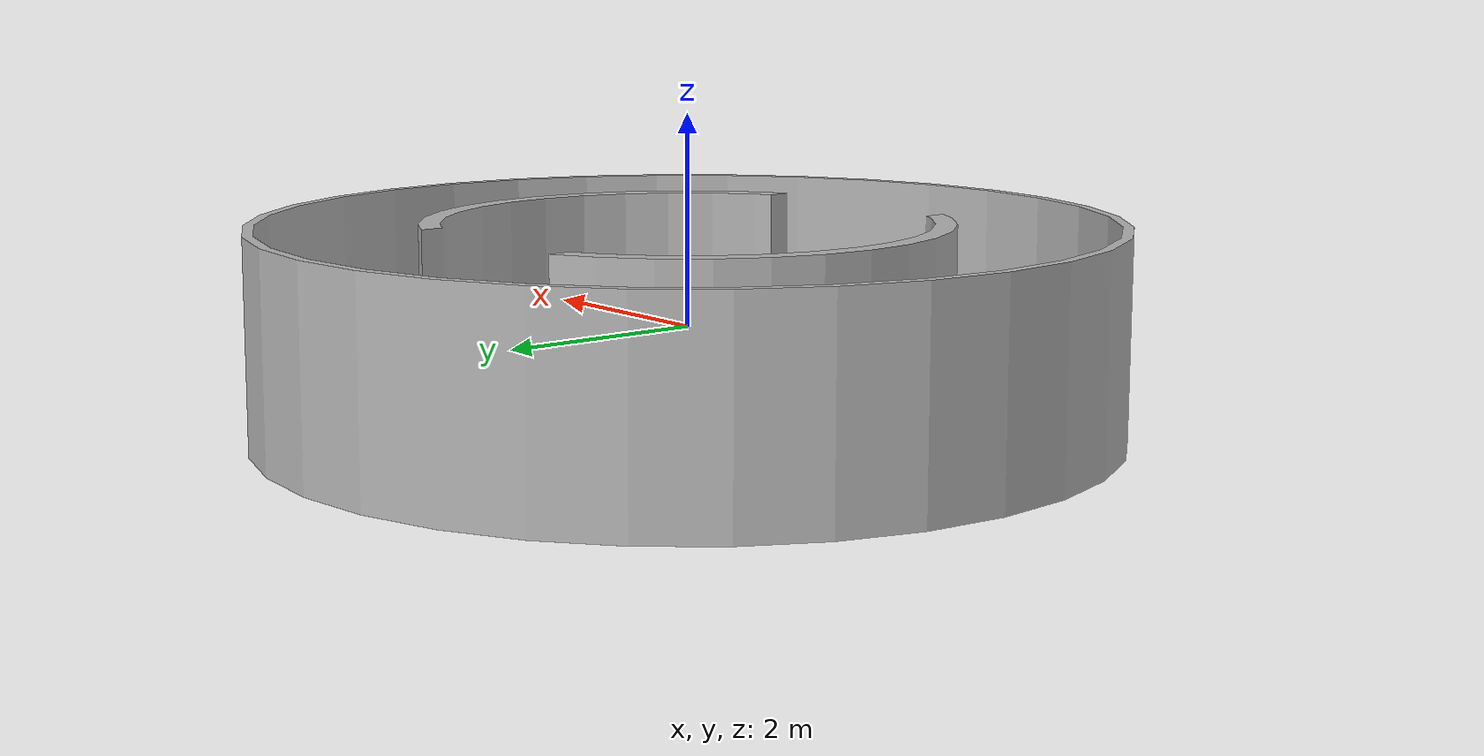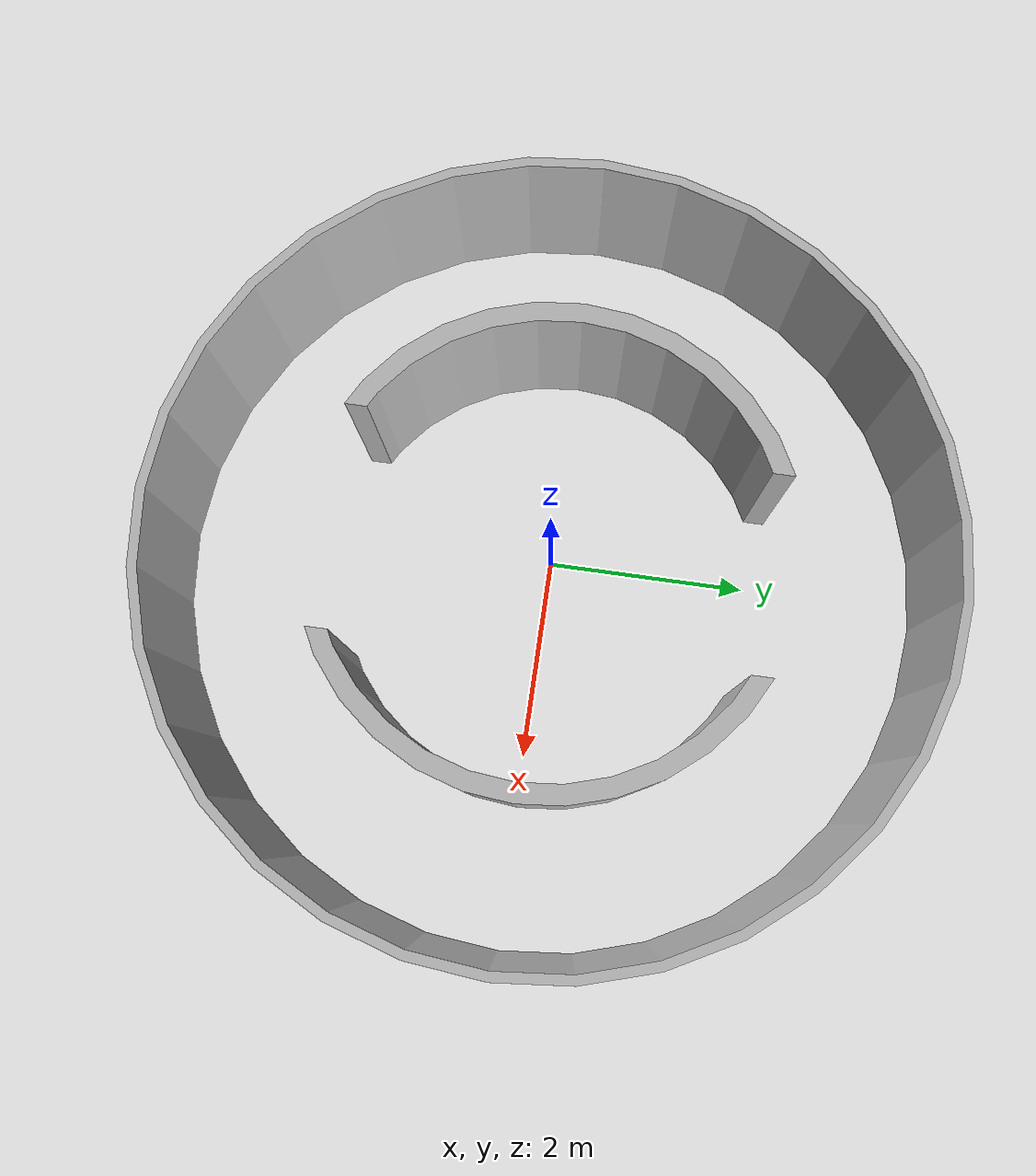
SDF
<?xml version='1.0'?>
<sdf version='1.6'>
    <model name="mz_library">
        <pose>0 0 -1 0 -0 0</pose>
        <static>true</static>
        <link name="libro_scene">
            <inertial>
                <mass>15</mass>
                <inertia>
                    <ixx>0.0</ixx>
                    <ixy>0.0</ixy>
                    <ixz>0.0</ixz>
                    <iyy>0.0</iyy>
                    <iyz>0.0</iyz>
                    <izz>0.0</izz>
                </inertia>
            </inertial>
            <collision name="collision">
                <pose>0 0 0 0 0 0</pose>
                <geometry>
                    <mesh>
                        <uri>model://mz_library/meshes/library.dae</uri>
                    </mesh>
                </geometry>
            </collision>
            <visual name="visual">
                <pose>0 0 0 0 0 0</pose>
                <geometry>
                    <mesh>
                        <uri>model://mz_library/meshes/library.dae</uri>
                    </mesh>
                </geometry>
            </visual>
        </link>
    </model>
</sdf>
